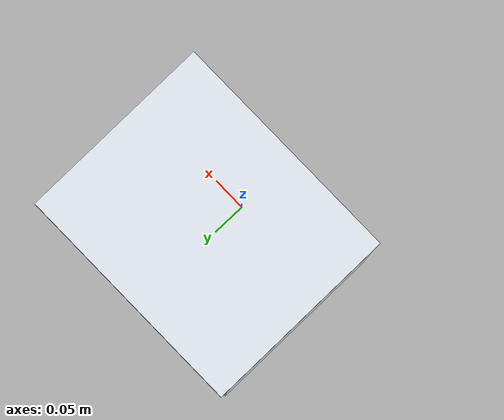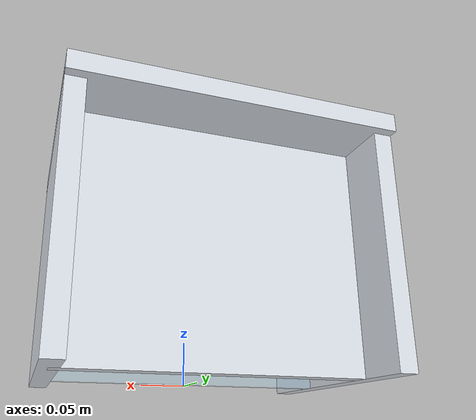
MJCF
<?xml version="1.0" encoding="utf-8"?>
<mujoco model="biosafety_cabinet">
  <compiler angle="radian" autolimits="true"/>
  <default>
    <default class="body"><geom contype="1" conaffinity="1"/></default>
  </default>
  <worldbody>
    <body name="base">
      <geom type="box" size="0.16 0.01 0.13" pos="0 0.13 0.13" rgba="0.85 0.87 0.9 1" class="body"/>
      <geom type="box" size="0.01 0.13 0.13" pos="-0.16 0.065 0.13" rgba="0.85 0.87 0.9 1" class="body"/>
      <geom type="box" size="0.01 0.13 0.13" pos="0.16 0.065 0.13" rgba="0.85 0.87 0.9 1" class="body"/>
      <geom type="box" size="0.17 0.14 0.01" pos="0 0.065 0.26" rgba="0.85 0.87 0.9 1" class="body"/>
      <body name="sash" pos="0 0.02 0.13">
        <joint name="sash_joint" type="slide" axis="0 0 1" range="0 0.16" damping="1.2" frictionloss="0.5"/>
  <geom type="box" size="0.15 0.006 0.13" pos="0 0 0" rgba="0.6 0.8 0.9 0.3" class="body"/>
      </body>
    </body>
  </worldbody>
</mujoco>
